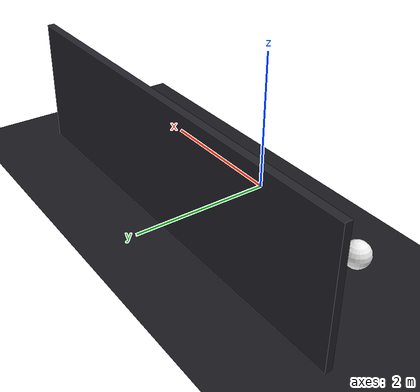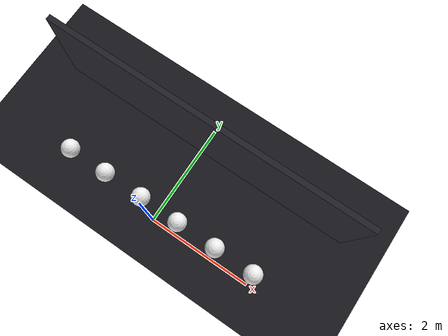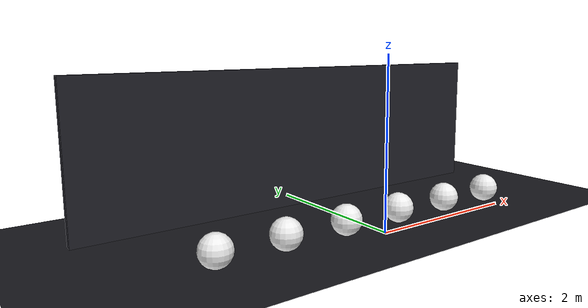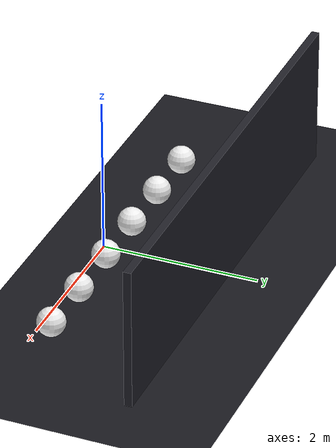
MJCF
<mujoco model="emissive_bloom">
  <asset>
    <texture name="dark" type="2d" builtin="checker" width="512" height="512"
             rgb1="0.08 0.08 0.10" rgb2="0.12 0.12 0.14"/>

    <material name="floor" texture="dark" texrepeat="6 6" texuniform="true" reflectance="0.4" metallic="0.5" roughness="0.2"/>
    <material name="wall" rgba="0.13 0.13 0.16 1" metallic="0.05" roughness="0.85"/>
    <material name="white" rgba="0.95 0.95 0.95 1" metallic="0.0" roughness="0.05" emission="1.0"/>
  </asset>

  <custom>
    <!-- Bloom: high strength, lots of levels for big halos. -->
    <numeric name="filament.bloom.enabled"    data="1"/>
    <numeric name="filament.bloom.strength"   data="0.55"/>
    <numeric name="filament.bloom.levels"     data="9"/>
    <numeric name="filament.bloom.resolution" data="384"/>
    <text    name="filament.bloom.quality"    data="ultra"/>
    <text    name="filament.shadows.type"     data="pcss"/>
  </custom>

  <worldbody>
    <camera name="default" pos="0 -3.4 2.0" xyaxes="1 0 0  0 0.60 1"/>

    <geom name="ground" type="plane" size="6 6 0.05" material="floor"/>
    <geom name="backwall" type="box" pos="0 1.6 0.9" size="3 0.05 0.9" material="wall"/>

    <light type="point" pos="-2.0 -0.2 0.40" diffuse="1.00 0.20 0.20" intensity="180000" range="3" bulbradius="0.10"/>
    <geom type="sphere" pos="-2.0 0.20 0.18" size="0.18" material="white"/>

    <light type="point" pos="-1.2 -0.2 0.40" diffuse="1.00 0.50 0.10" intensity="180000" range="3" bulbradius="0.10"/>
    <geom type="sphere" pos="-1.2 0.20 0.18" size="0.18" material="white"/>

    <light type="point" pos="-0.4 -0.2 0.40" diffuse="1.00 0.95 0.30" intensity="180000" range="3" bulbradius="0.10"/>
    <geom type="sphere" pos="-0.4 0.20 0.18" size="0.18" material="white"/>

    <light type="point" pos=" 0.4 -0.2 0.40" diffuse="0.20 1.00 0.40" intensity="180000" range="3" bulbradius="0.10"/>
    <geom type="sphere" pos=" 0.4 0.20 0.18" size="0.18" material="white"/>

    <light type="point" pos=" 1.2 -0.2 0.40" diffuse="0.30 0.55 1.00" intensity="180000" range="3" bulbradius="0.10"/>
    <geom type="sphere" pos=" 1.2 0.20 0.18" size="0.18" material="white"/>

    <light type="point" pos=" 2.0 -0.2 0.40" diffuse="1.00 0.30 0.95" intensity="180000" range="3" bulbradius="0.10"/>
    <geom type="sphere" pos=" 2.0 0.20 0.18" size="0.18" material="white"/>
  </worldbody>
</mujoco>
